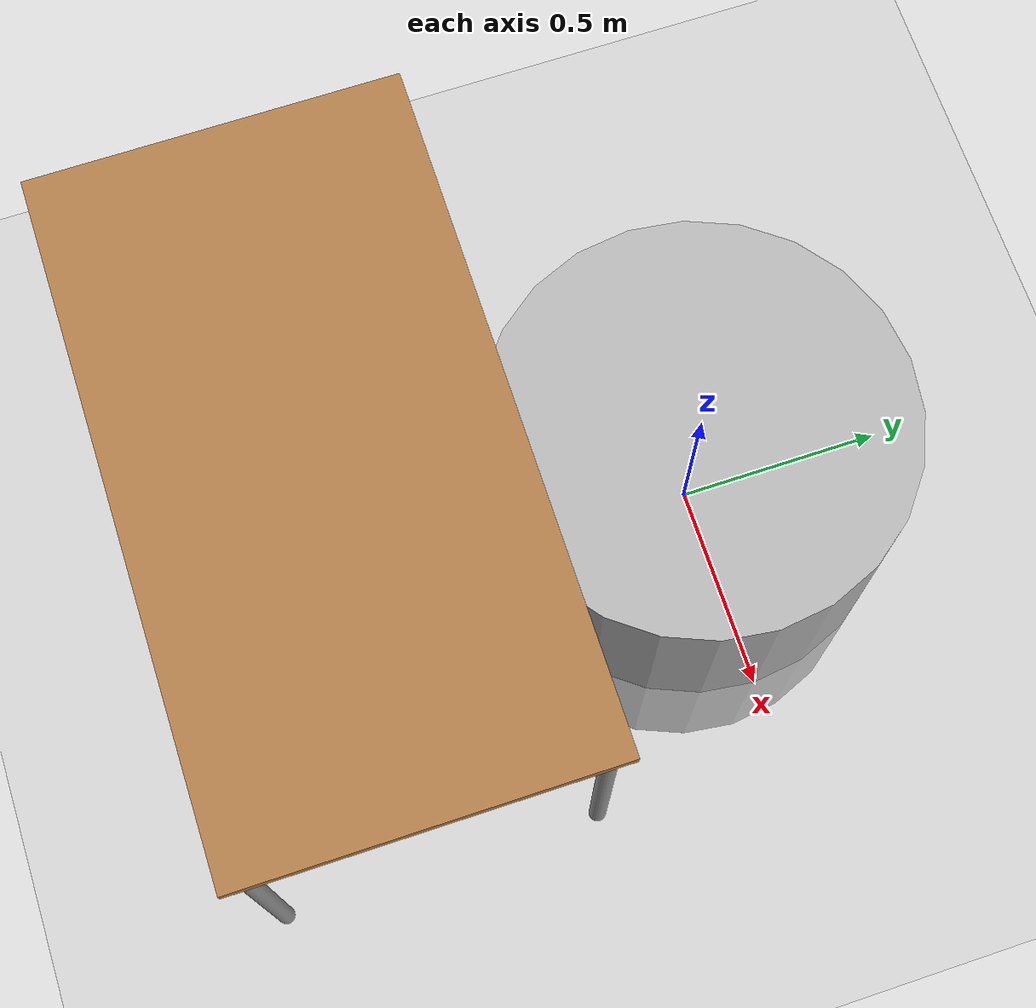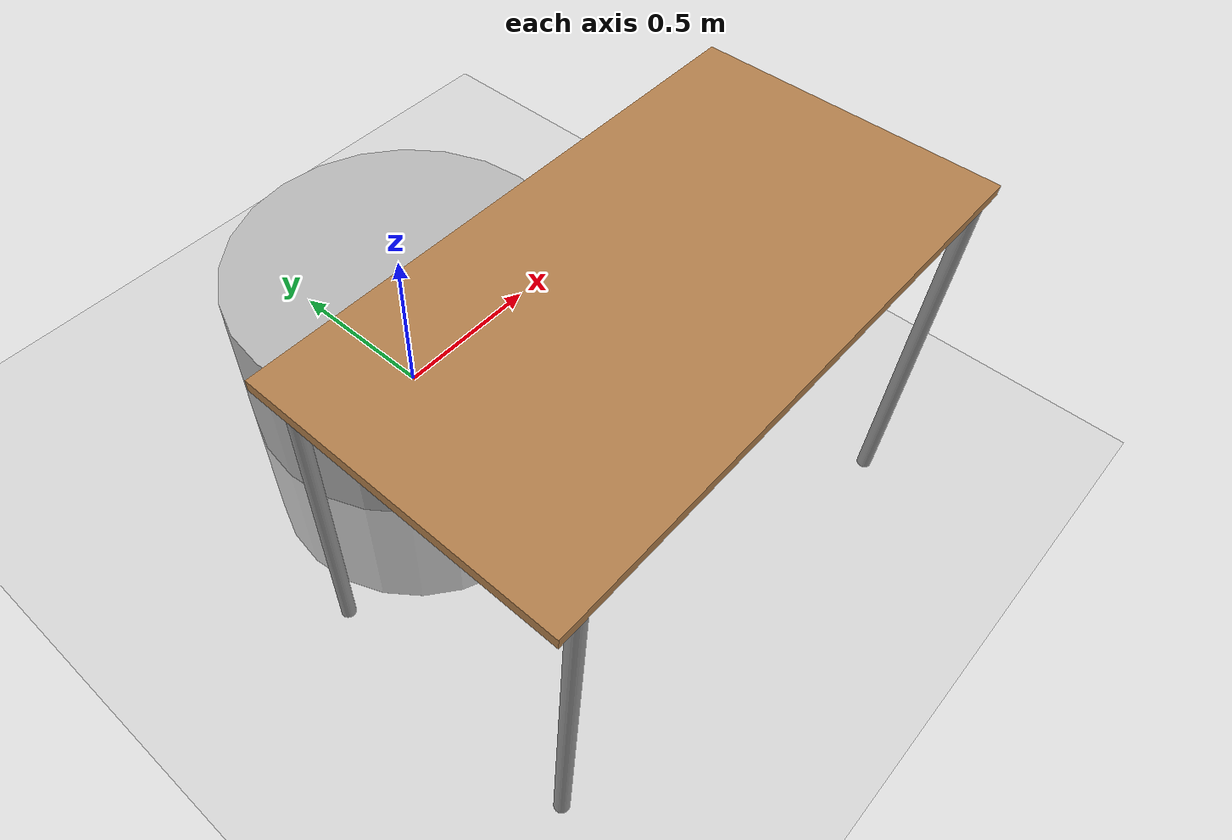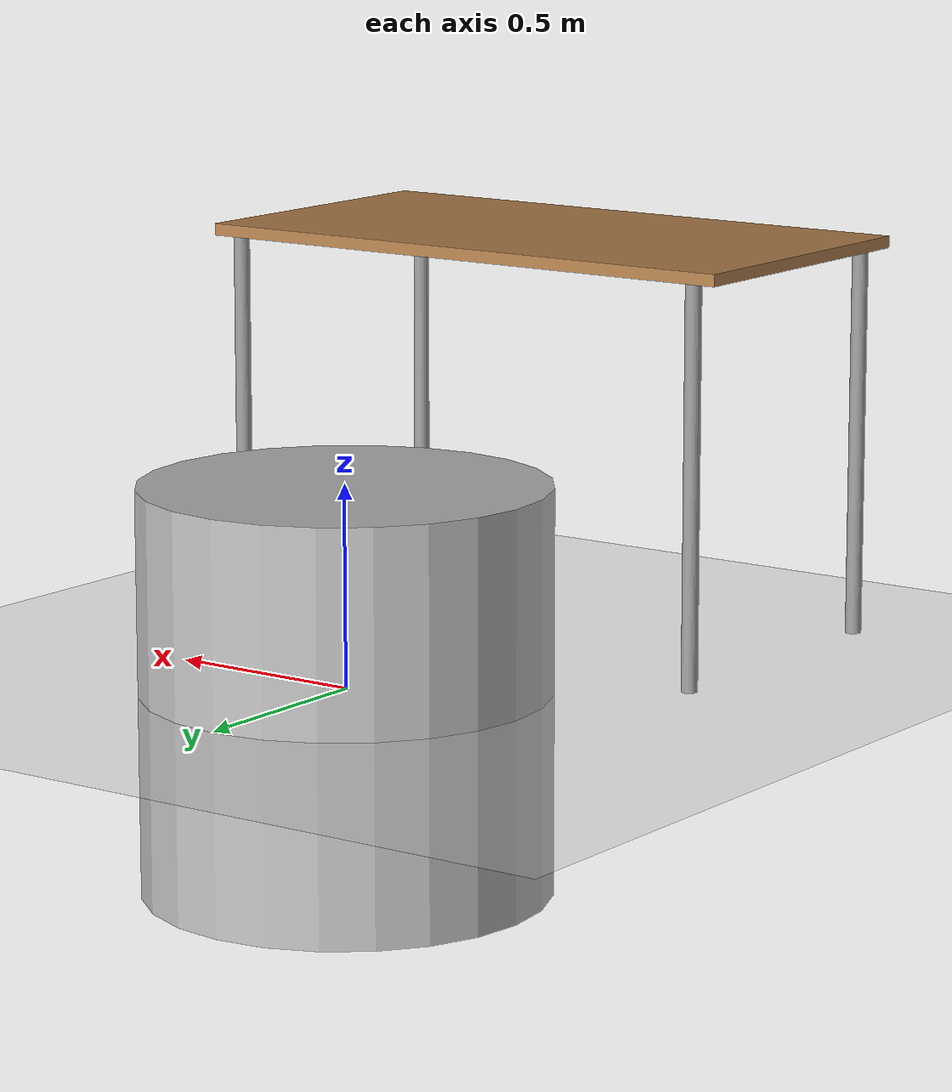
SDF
<?xml version="1.0" ?>
<sdf version="1.4">
  <world name="default">
    <include>
      <uri>model://ground_plane</uri>
    </include>
    <include>
      <uri>model://sun</uri>
    </include>
    <include>
      <uri>model://table</uri>
      <name>table</name>
      <pose>0.0 -0.84 0 0 0 0</pose>
    </include>
    <model name="pepper">
      <pose>0 0 0 0 0 0</pose>
      <link name="link">
        <collision name="collision">
          <geometry>
            <cylinder>
              <radius>0.5</radius>
              <length>1.0</length>
            </cylinder>
          </geometry>
        </collision>
        <visual name="visual">
          <geometry>
            <cylinder>
              <radius>0.5</radius>
              <length>1.0</length>
            </cylinder>
          </geometry>
        </visual>
      </link>
    </model>

    <physics type="ode" update_rate="100.0">
      <max_step_size>0.001</max_step_size>
      <real_time_factor>1</real_time_factor>
      <real_time_update_rate>1000</real_time_update_rate>
      <gravity>0 0 -9.81</gravity>
    </physics>

  </world>
</sdf>

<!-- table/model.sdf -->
<sdf version="1.5">
  <model name="table">
    <static>true</static>
    <link name="link">
      <collision name="surface">
        <pose>0 0 1.0 0 0 0</pose>
        <geometry>
          <box>
            <size>1.5 0.8 0.03</size>
          </box>
        </geometry>
        <surface>
          <friction>
            <ode>
              <mu>0.6</mu>
              <mu2>0.6</mu2>
            </ode>
          </friction>
        </surface>
      </collision>
      <visual name="visual1">
        <pose>0 0 1.0 0 0 0</pose>
        <geometry>
          <box>
            <size>1.5 0.8 0.03</size>
          </box>
        </geometry>
        <material>
          <script>
            <uri>model://media/materials/scripts/gazebo.material</uri>
            <name>Gazebo/Wood</name>
          </script>
        </material>
      </visual>
      <collision name="front_left_leg">
        <pose>0.68 0.38 0.5 0 0 0</pose>
        <geometry>
          <cylinder>
            <radius>0.02</radius>
            <length>1.0</length>
          </cylinder>
        </geometry>
      </collision>
      <visual name="front_left_leg">
        <pose>0.68 0.38 0.5 0 0 0</pose>
        <geometry>
          <cylinder>
            <radius>0.02</radius>
            <length>1.0</length>
          </cylinder>
        </geometry>
        <material>
          <script>
            <uri>model://media/materials/scripts/gazebo.material</uri>
            <name>Gazebo/Grey</name>
          </script>
        </material>
      </visual>
      <collision name="front_right_leg">
        <pose>0.68 -0.38 0.5 0 0 0</pose>
        <geometry>
          <cylinder>
            <radius>0.02</radius>
            <length>1.0</length>
          </cylinder>
        </geometry>
      </collision>
      <visual name="front_right_leg">
        <pose>0.68 -0.38 0.5 0 0 0</pose>
        <geometry>
          <cylinder>
            <radius>0.02</radius>
            <length>1.0</length>
          </cylinder>
        </geometry>
        <material>
          <script>
            <uri>model://media/materials/scripts/gazebo.material</uri>
            <name>Gazebo/Grey</name>
          </script>
        </material>
      </visual>
      <collision name="back_right_leg">
        <pose>-0.68 -0.38 0.5 0 0 0</pose>
        <geometry>
          <cylinder>
            <radius>0.02</radius>
            <length>1.0</length>
          </cylinder>
        </geometry>
      </collision>
      <visual name="back_right_leg">
        <pose>-0.68 -0.38 0.5 0 0 0</pose>
        <geometry>
          <cylinder>
            <radius>0.02</radius>
            <length>1.0</length>
          </cylinder>
        </geometry>
        <material>
          <script>
            <uri>model://media/materials/scripts/gazebo.material</uri>
            <name>Gazebo/Grey</name>
          </script>
        </material>
      </visual>
      <collision name="back_left_leg">
        <pose>-0.68 0.38 0.5 0 0 0</pose>
        <geometry>
          <cylinder>
            <radius>0.02</radius>
            <length>1.0</length>
          </cylinder>
        </geometry>
      </collision>
      <visual name="back_left_leg">
        <pose>-0.68 0.38 0.5 0 0 0</pose>
        <geometry>
          <cylinder>
            <radius>0.02</radius>
            <length>1.0</length>
          </cylinder>
        </geometry>
        <material>
          <script>
            <uri>model://media/materials/scripts/gazebo.material</uri>
            <name>Gazebo/Grey</name>
          </script>
        </material>
      </visual>
    </link>
  </model>
</sdf>
